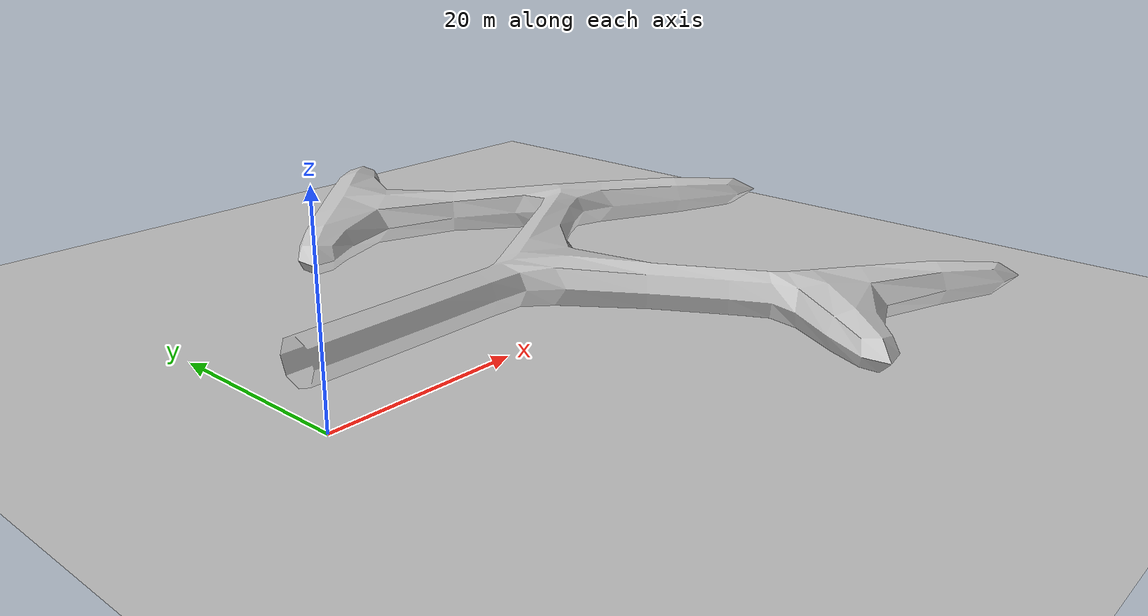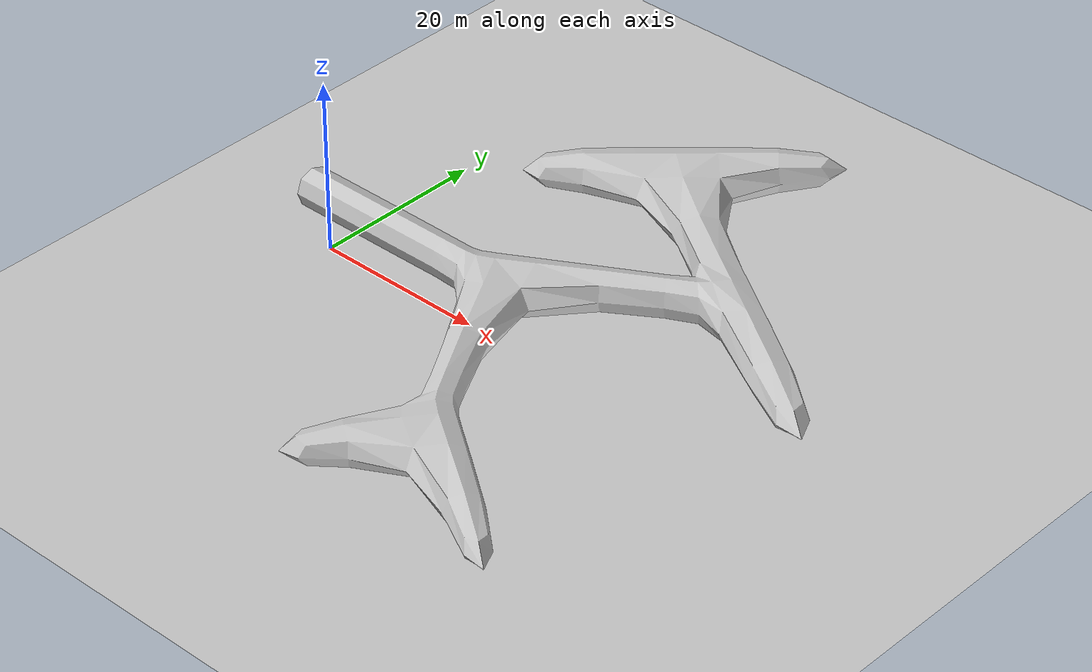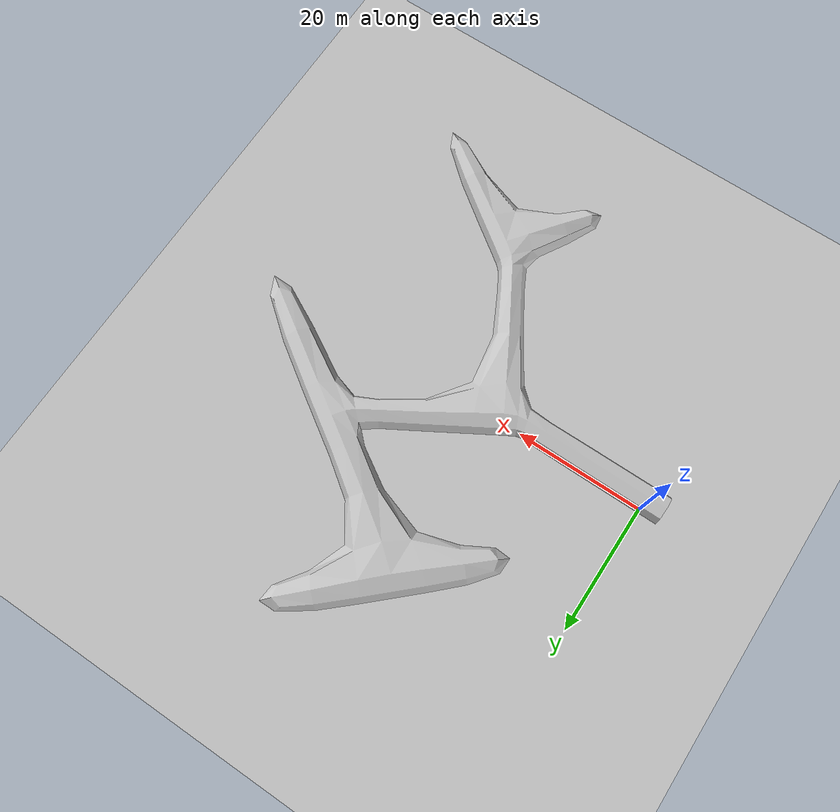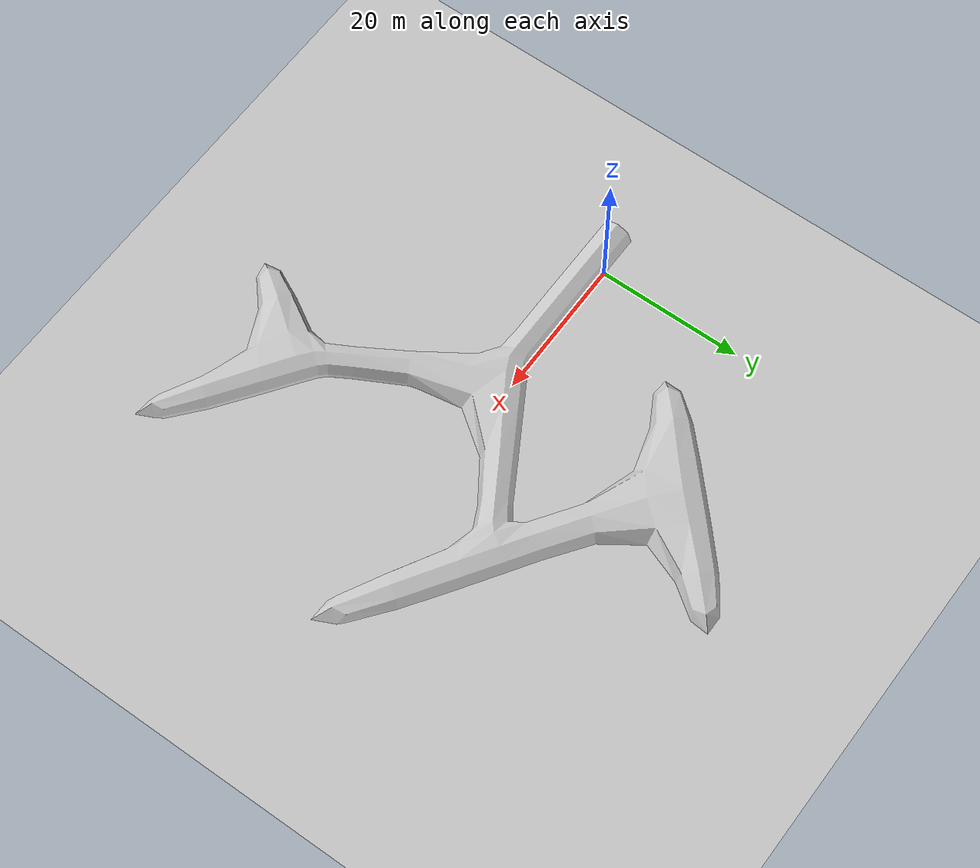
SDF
<?xml version="1.0" ?>
<sdf version="1.7">
  <world name="map3_world">
    <include>
      <uri>model://sun</uri>
    </include>
    <include>
      <uri>model://ground_plane</uri>
    </include>
    <include>
      <uri>model://map3</uri>
      <name>map3</name>
      <pose>0 0 0 0 0 0</pose>
    </include>
    <physics type="ode">
      <max_step_size>0.005</max_step_size>
      <real_time_factor>1.0</real_time_factor>
      <real_time_update_rate>200</real_time_update_rate>
      <ode>
        <solver>
          <type>quick</type>
          <iters>50</iters> </solver>
      </ode>
    </physics>
  </world>
</sdf>

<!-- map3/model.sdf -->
<sdf version="1.7">
  <model name="my_exported_model">
    <static>true</static>
    <link name="link">
      <pose>0 0 0 1.5707 0 0</pose>
      <visual name="visual">
        <geometry>
          <mesh>
            <uri>meshes/model.dae</uri>
          </mesh>
        </geometry>
      </visual>
      <collision name="collision">
        <geometry>
          <mesh>
            <uri>meshes/model.dae</uri>
          </mesh>
        </geometry>
      </collision>
    </link>
  </model>
</sdf>
